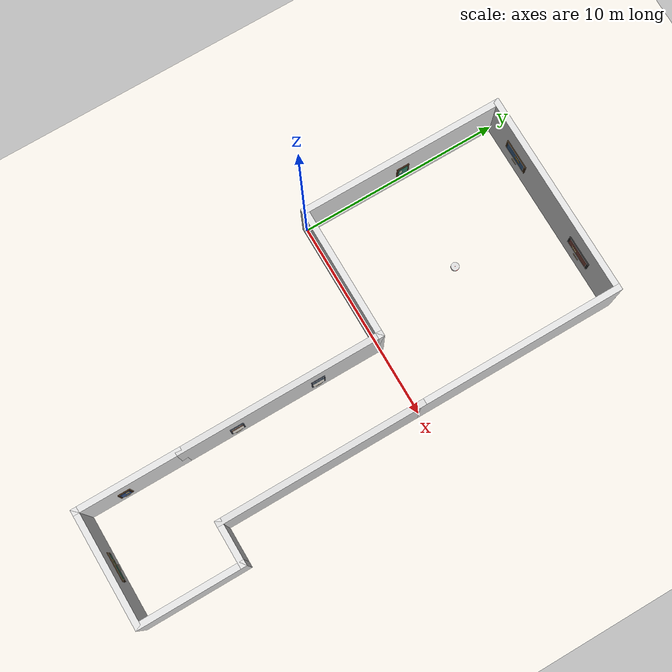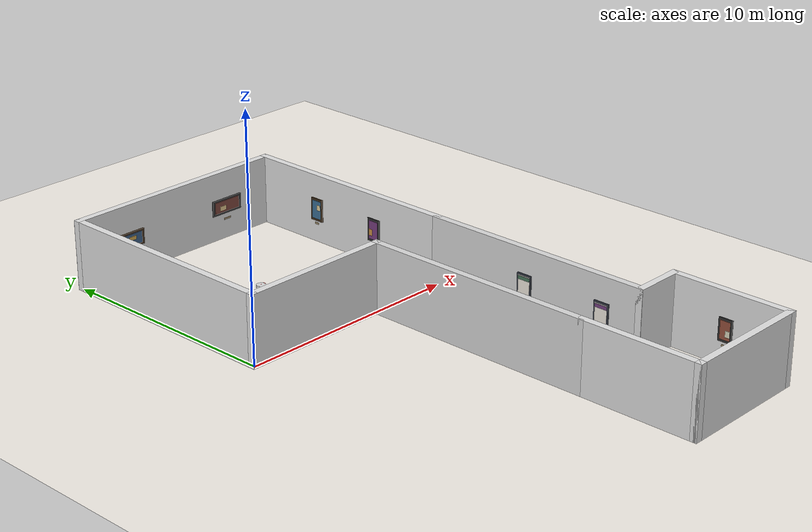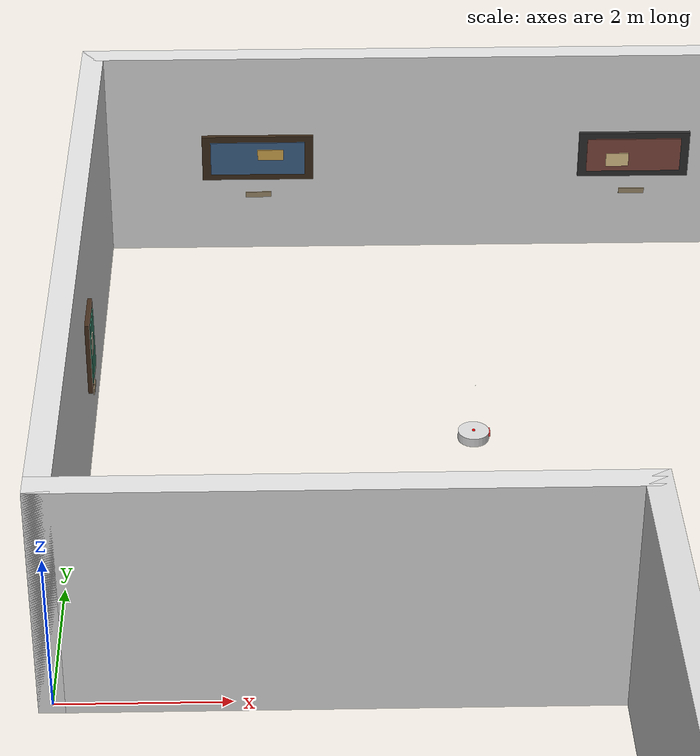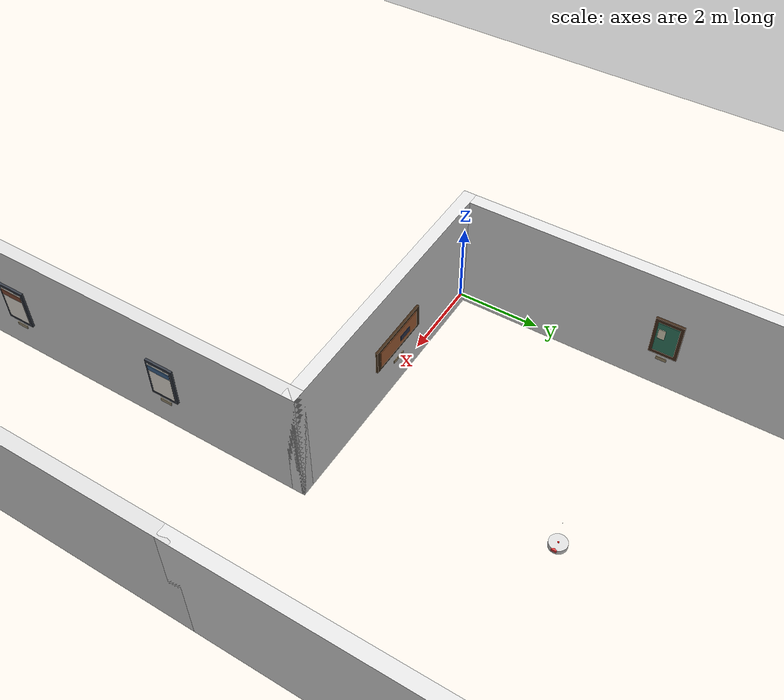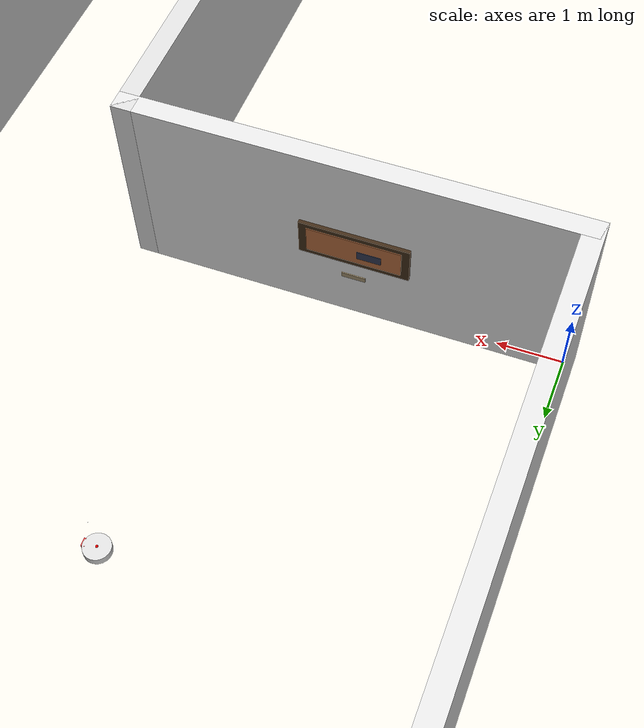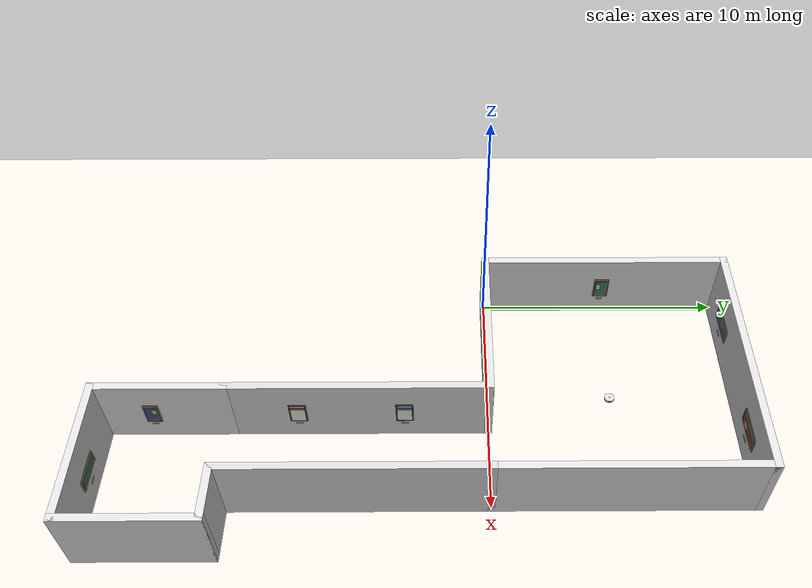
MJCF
<mujoco model="museum_shell">
  <compiler angle="radian"/>

  <option gravity="0 0 0"/>

  <visual>
    <global offwidth="1920" offheight="1080"/>
    <quality offsamples="8"/>
  </visual>

  <worldbody>
    <geom name="floor" size="30 30 0.1" type="plane" rgba="0.95 0.93 0.9 1"/>
    <geom name="corridor_wall_left" size="0.15 5.15 1.5" pos="6.5 -5 1.5" type="box" rgba="0.85 0.85 0.85 1"/>
    <geom name="corridor_wall_right" size="0.15 5.15 1.5" pos="10 -5 1.5" type="box" rgba="0.85 0.85 0.85 1"/>
    <geom name="roomA_wall_top" size="5.15 0.15 1.5" pos="5 10 1.5" type="box" rgba="0.88 0.88 0.88 1"/>
    <geom name="roomA_wall_left" size="0.15 5.15 1.5" pos="0 5 1.5" type="box" rgba="0.88 0.88 0.88 1"/>
    <geom name="roomA_wall_right" size="0.15 5.15 1.5" pos="10 5 1.5" type="box" rgba="0.88 0.88 0.88 1"/>
    <geom name="roomA_wall_bottom_left" size="3.4 0.15 1.5" pos="3.25 0 1.5" type="box" rgba="0.88 0.88 0.88 1"/>
    <geom name="roomB_wall_left" size="0.15 2.65 1.5" pos="6.5 -12.5 1.5" type="box" rgba="0.88 0.88 0.88 1"/>
    <geom name="roomB_wall_right" size="0.15 2.65 1.5" pos="12 -12.5 1.5" type="box" rgba="0.88 0.88 0.88 1"/>
    <geom name="roomB_wall_bottom" size="2.9 0.15 1.5" pos="9.25 -15 1.5" type="box" rgba="0.88 0.88 0.88 1"/>
    <geom name="roomB_wall_top_right" size="1.15 0.15 1.5" pos="11 -10 1.5" type="box" rgba="0.88 0.88 0.88 1"/>
    <geom name="exhibit_roomA_top_left_frame" size="0.78 0.028 0.34" pos="2.25 9.815 1.48" type="box" contype="0" conaffinity="0" rgba="0.24 0.17 0.1 1"/>
    <geom name="exhibit_roomA_top_left_canvas" size="0.66 0.01 0.25" pos="2.25 9.785 1.48" type="box" contype="0" conaffinity="0" rgba="0.24 0.39 0.55 1"/>
    <geom name="exhibit_roomA_top_left_detail" size="0.18 0.006 0.08" pos="2.43 9.772 1.54" type="box" contype="0" conaffinity="0" rgba="0.84 0.67 0.31 1"/>
    <geom name="exhibit_roomA_top_left_plaque" size="0.18 0.008 0.04" pos="2.25 9.79 0.9" type="box" contype="0" conaffinity="0" rgba="0.62 0.55 0.42 1"/>
    <geom name="exhibit_roomA_top_right_frame" size="0.78 0.028 0.34" pos="7.55 9.815 1.48" type="box" contype="0" conaffinity="0" rgba="0.18 0.18 0.18 1"/>
    <geom name="exhibit_roomA_top_right_canvas" size="0.66 0.01 0.25" pos="7.55 9.785 1.48" type="box" contype="0" conaffinity="0" rgba="0.5 0.28 0.24 1"/>
    <geom name="exhibit_roomA_top_right_detail" size="0.16 0.006 0.1" pos="7.32 9.772 1.41" type="box" contype="0" conaffinity="0" rgba="0.9 0.79 0.56 1"/>
    <geom name="exhibit_roomA_top_right_plaque" size="0.18 0.008 0.04" pos="7.55 9.79 0.9" type="box" contype="0" conaffinity="0" rgba="0.62 0.55 0.42 1"/>
    <geom name="exhibit_roomA_left_frame" size="0.028 0.32 0.5" pos="0.185 5 1.47" type="box" contype="0" conaffinity="0" rgba="0.27 0.18 0.11 1"/>
    <geom name="exhibit_roomA_left_canvas" size="0.01 0.24 0.4" pos="0.214 5 1.47" type="box" contype="0" conaffinity="0" rgba="0.2 0.5 0.4 1"/>
    <geom name="exhibit_roomA_left_detail" size="0.006 0.08 0.13" pos="0.226 4.88 1.58" type="box" contype="0" conaffinity="0" rgba="0.9 0.87 0.77 1"/>
    <geom name="exhibit_roomA_left_plaque" size="0.008 0.12 0.04" pos="0.208 5 0.86" type="box" contype="0" conaffinity="0" rgba="0.62 0.55 0.42 1"/>
    <geom name="exhibit_roomA_right_frame" size="0.028 0.32 0.5" pos="9.815 3.35 1.47" type="box" contype="0" conaffinity="0" rgba="0.18 0.18 0.18 1"/>
    <geom name="exhibit_roomA_right_canvas" size="0.01 0.24 0.4" pos="9.786 3.35 1.47" type="box" contype="0" conaffinity="0" rgba="0.46 0.24 0.49 1"/>
    <geom name="exhibit_roomA_right_detail" size="0.006 0.1 0.14" pos="9.774 3.49 1.36" type="box" contype="0" conaffinity="0" rgba="0.79 0.56 0.26 1"/>
    <geom name="exhibit_roomA_right_plaque" size="0.008 0.12 0.04" pos="9.792 3.35 0.86" type="box" contype="0" conaffinity="0" rgba="0.62 0.55 0.42 1"/>
    <geom name="exhibit_roomA_right_upper_frame" size="0.028 0.32 0.5" pos="9.815 6.65 1.47" type="box" contype="0" conaffinity="0" rgba="0.24 0.17 0.1 1"/>
    <geom name="exhibit_roomA_right_upper_canvas" size="0.01 0.24 0.4" pos="9.786 6.65 1.47" type="box" contype="0" conaffinity="0" rgba="0.23 0.43 0.58 1"/>
    <geom name="exhibit_roomA_right_upper_detail" size="0.006 0.09 0.12" pos="9.774 6.53 1.58" type="box" contype="0" conaffinity="0" rgba="0.89 0.82 0.62 1"/>
    <geom name="exhibit_roomA_right_upper_plaque" size="0.008 0.12 0.04" pos="9.792 6.65 0.86" type="box" contype="0" conaffinity="0" rgba="0.62 0.55 0.42 1"/>
    <geom name="exhibit_roomA_bottom_frame" size="0.82 0.028 0.3" pos="3.15 0.185 1.46" type="box" contype="0" conaffinity="0" rgba="0.25 0.17 0.09 1"/>
    <geom name="exhibit_roomA_bottom_canvas" size="0.7 0.01 0.22" pos="3.15 0.214 1.46" type="box" contype="0" conaffinity="0" rgba="0.71 0.42 0.24 1"/>
    <geom name="exhibit_roomA_bottom_detail" size="0.18 0.006 0.07" pos="2.92 0.226 1.42" type="box" contype="0" conaffinity="0" rgba="0.19 0.22 0.32 1"/>
    <geom name="exhibit_roomA_bottom_plaque" size="0.18 0.008 0.04" pos="3.15 0.208 0.88" type="box" contype="0" conaffinity="0" rgba="0.62 0.55 0.42 1"/>
    <geom name="exhibit_corridor_left_upper_frame" size="0.028 0.34 0.5" pos="6.685 -3.25 1.46" type="box" contype="0" conaffinity="0" rgba="0.22 0.24 0.28 1"/>
    <geom name="exhibit_corridor_left_upper_panel" size="0.01 0.28 0.42" pos="6.714 -3.25 1.46" type="box" contype="0" conaffinity="0" rgba="0.94 0.92 0.88 1"/>
    <geom name="exhibit_corridor_left_upper_title" size="0.006 0.28 0.07" pos="6.726 -3.25 1.78" type="box" contype="0" conaffinity="0" rgba="0.24 0.4 0.57 1"/>
    <geom name="exhibit_corridor_left_upper_plaque" size="0.008 0.14 0.04" pos="6.708 -3.25 0.84" type="box" contype="0" conaffinity="0" rgba="0.66 0.61 0.5 1"/>
    <geom name="exhibit_corridor_left_lower_frame" size="0.028 0.34 0.5" pos="6.685 -7.35 1.46" type="box" contype="0" conaffinity="0" rgba="0.22 0.24 0.28 1"/>
    <geom name="exhibit_corridor_left_lower_panel" size="0.01 0.28 0.42" pos="6.714 -7.35 1.46" type="box" contype="0" conaffinity="0" rgba="0.94 0.92 0.88 1"/>
    <geom name="exhibit_corridor_left_lower_title" size="0.006 0.28 0.07" pos="6.726 -7.35 1.78" type="box" contype="0" conaffinity="0" rgba="0.53 0.3 0.21 1"/>
    <geom name="exhibit_corridor_left_lower_plaque" size="0.008 0.14 0.04" pos="6.708 -7.35 0.84" type="box" contype="0" conaffinity="0" rgba="0.66 0.61 0.5 1"/>
    <geom name="exhibit_corridor_right_upper_frame" size="0.028 0.34 0.5" pos="9.815 -4.65 1.46" type="box" contype="0" conaffinity="0" rgba="0.22 0.24 0.28 1"/>
    <geom name="exhibit_corridor_right_upper_panel" size="0.01 0.28 0.42" pos="9.786 -4.65 1.46" type="box" contype="0" conaffinity="0" rgba="0.94 0.92 0.88 1"/>
    <geom name="exhibit_corridor_right_upper_title" size="0.006 0.28 0.07" pos="9.774 -4.65 1.78" type="box" contype="0" conaffinity="0" rgba="0.28 0.46 0.35 1"/>
    <geom name="exhibit_corridor_right_upper_plaque" size="0.008 0.14 0.04" pos="9.792 -4.65 0.84" type="box" contype="0" conaffinity="0" rgba="0.66 0.61 0.5 1"/>
    <geom name="exhibit_corridor_right_lower_frame" size="0.028 0.34 0.5" pos="9.815 -8.35 1.46" type="box" contype="0" conaffinity="0" rgba="0.22 0.24 0.28 1"/>
    <geom name="exhibit_corridor_right_lower_panel" size="0.01 0.28 0.42" pos="9.786 -8.35 1.46" type="box" contype="0" conaffinity="0" rgba="0.94 0.92 0.88 1"/>
    <geom name="exhibit_corridor_right_lower_title" size="0.006 0.28 0.07" pos="9.774 -8.35 1.78" type="box" contype="0" conaffinity="0" rgba="0.45 0.25 0.5 1"/>
    <geom name="exhibit_corridor_right_lower_plaque" size="0.008 0.14 0.04" pos="9.792 -8.35 0.84" type="box" contype="0" conaffinity="0" rgba="0.66 0.61 0.5 1"/>
    <geom name="exhibit_roomB_left_frame" size="0.028 0.3 0.48" pos="6.685 -12.95 1.46" type="box" contype="0" conaffinity="0" rgba="0.25 0.17 0.1 1"/>
    <geom name="exhibit_roomB_left_canvas" size="0.01 0.22 0.38" pos="6.714 -12.95 1.46" type="box" contype="0" conaffinity="0" rgba="0.23 0.34 0.54 1"/>
    <geom name="exhibit_roomB_left_detail" size="0.006 0.08 0.11" pos="6.726 -12.84 1.6" type="box" contype="0" conaffinity="0" rgba="0.9 0.79 0.53 1"/>
    <geom name="exhibit_roomB_left_plaque" size="0.008 0.12 0.04" pos="6.708 -12.95 0.84" type="box" contype="0" conaffinity="0" rgba="0.62 0.55 0.42 1"/>
    <geom name="exhibit_roomB_right_frame" size="0.028 0.3 0.48" pos="11.815 -12.5 1.46" type="box" contype="0" conaffinity="0" rgba="0.18 0.18 0.18 1"/>
    <geom name="exhibit_roomB_right_canvas" size="0.01 0.22 0.38" pos="11.786 -12.5 1.46" type="box" contype="0" conaffinity="0" rgba="0.58 0.31 0.23 1"/>
    <geom name="exhibit_roomB_right_detail" size="0.006 0.1 0.13" pos="11.774 -12.62 1.34" type="box" contype="0" conaffinity="0" rgba="0.86 0.84 0.74 1"/>
    <geom name="exhibit_roomB_right_plaque" size="0.008 0.12 0.04" pos="11.792 -12.5 0.84" type="box" contype="0" conaffinity="0" rgba="0.62 0.55 0.42 1"/>
    <geom name="exhibit_roomB_bottom_frame" size="0.72 0.028 0.28" pos="9.25 -14.815 1.45" type="box" contype="0" conaffinity="0" rgba="0.24 0.17 0.1 1"/>
    <geom name="exhibit_roomB_bottom_canvas" size="0.6 0.01 0.2" pos="9.25 -14.786 1.45" type="box" contype="0" conaffinity="0" rgba="0.27 0.47 0.37 1"/>
    <geom name="exhibit_roomB_bottom_detail" size="0.14 0.006 0.06" pos="9.05 -14.774 1.49" type="box" contype="0" conaffinity="0" rgba="0.77 0.55 0.25 1"/>
    <geom name="exhibit_roomB_bottom_plaque" size="0.16 0.008 0.04" pos="9.25 -14.792 0.87" type="box" contype="0" conaffinity="0" rgba="0.62 0.55 0.42 1"/>
    <camera name="cam_overview" pos="6 -14 7" quat="0.881017 0.473085 0 0"/>
    <body name="robot" pos="5 5 0.06">
      <joint name="robot_x" pos="0 0 0" axis="1 0 0" type="slide" damping="100"/>
      <joint name="robot_y" pos="0 0 0" axis="0 1 0" type="slide" damping="100"/>
      <joint name="robot_yaw" pos="0 0 0" axis="0 0 1" damping="1"/>
      <geom name="robot_base" size="0.2 0.06" type="cylinder" friction="0.2 0.01 0.001" mass="20" rgba="0.85 0.85 0.85 1"/>
      <geom name="robot_nose" size="0.03 0.06 0.03" pos="0.18 0 0.03" type="box" contype="0" conaffinity="0" rgba="0.95 0.25 0.25 1"/>
      <geom name="robot_speaking_halo" size="0.34 0.004" pos="0 0 -0.055" type="cylinder" contype="0" conaffinity="0" rgba="1 0.9 0.2 0"/>
      <site name="robot_site" pos="0 0 0.06" size="0.02" rgba="1 0 0 1"/>
      <site name="explanation" pos="0 0 0.72" group="3" rgba="1 1 1 1"/>
      <site name="answer question" pos="0 0 0.75" group="1" rgba="1 1 1 1"/>
      <site name="please rejoin" pos="0 0 0.78" group="4" rgba="1 1 1 1"/>
      <site name="Please let me pass." pos="0 0 0.84" group="5" rgba="1 1 1 1"/>
    </body>
    <body name="person1" pos="0 0 0.125">
      <joint name="person1_x" pos="0 0 0" axis="1 0 0" type="slide" damping="100" frictionloss="20"/>
      <joint name="person1_y" pos="0 0 0" axis="0 1 0" type="slide" damping="100" frictionloss="20"/>
      <joint name="person1_yaw" pos="0 0 0" axis="0 0 1" damping="0.1"/>
      <geom name="person1_torso" size="0.125 0.1" pos="0 0 0.125" quat="0.707107 0 0 0.707107" type="capsule" mass="60" rgba="0.25 0.75 0.35 1"/>
      <geom name="person1_head" size="0.09" pos="0 0 0.36" contype="0" conaffinity="0" rgba="0.95 0.85 0.75 1"/>
      <geom name="person1_nose" size="0.02 0.03 0.02" pos="0.18 0 0.36" type="box" contype="0" conaffinity="0" rgba="0.95 0.35 0.35 1"/>
      <geom name="person1_speaking_halo" size="0.32 0.004" pos="0 0 -0.115" type="cylinder" contype="0" conaffinity="0" rgba="1 0.9 0.2 0"/>
      <site name="person1_site" pos="0 0 0.125" size="0.02" rgba="0 1 0 1"/>
      <site name="p1" pos="0 0 0.52" group="2" rgba="1 1 1 1"/>
    </body>
    <body name="person2" pos="0 0 0.125">
      <joint name="person2_x" pos="0 0 0" axis="1 0 0" type="slide" damping="100" frictionloss="20"/>
      <joint name="person2_y" pos="0 0 0" axis="0 1 0" type="slide" damping="100" frictionloss="20"/>
      <joint name="person2_yaw" pos="0 0 0" axis="0 0 1" damping="0.1"/>
      <geom name="person2_torso" size="0.125 0.1" pos="0 0 0.125" quat="0.707107 0 0 0.707107" type="capsule" mass="60" rgba="0.2 0.7 0.3 1"/>
      <geom name="person2_head" size="0.09" pos="0 0 0.36" contype="0" conaffinity="0" rgba="0.95 0.85 0.75 1"/>
      <geom name="person2_nose" size="0.02 0.03 0.02" pos="0.18 0 0.36" type="box" contype="0" conaffinity="0" rgba="0.95 0.35 0.35 1"/>
      <geom name="person2_speaking_halo" size="0.32 0.004" pos="0 0 -0.115" type="cylinder" contype="0" conaffinity="0" rgba="1 0.9 0.2 0"/>
      <site name="person2_site" pos="0 0 0.125" size="0.02" rgba="0 1 0 1"/>
      <site name="p2" pos="0 0 0.52" group="2" rgba="1 1 1 1"/>
    </body>
    <body name="person3" pos="0 0 0.125">
      <joint name="person3_x" pos="0 0 0" axis="1 0 0" type="slide" damping="100" frictionloss="20"/>
      <joint name="person3_y" pos="0 0 0" axis="0 1 0" type="slide" damping="100" frictionloss="20"/>
      <joint name="person3_yaw" pos="0 0 0" axis="0 0 1" damping="0.1"/>
      <geom name="person3_torso" size="0.125 0.1" pos="0 0 0.125" quat="0.707107 0 0 0.707107" type="capsule" mass="60" rgba="0.22 0.72 0.33 1"/>
      <geom name="person3_head" size="0.09" pos="0 0 0.36" contype="0" conaffinity="0" rgba="0.95 0.85 0.75 1"/>
      <geom name="person3_nose" size="0.02 0.03 0.02" pos="0.18 0 0.36" type="box" contype="0" conaffinity="0" rgba="0.95 0.35 0.35 1"/>
      <geom name="person3_speaking_halo" size="0.32 0.004" pos="0 0 -0.115" type="cylinder" contype="0" conaffinity="0" rgba="1 0.9 0.2 0"/>
      <site name="person3_site" pos="0 0 0.125" size="0.02" rgba="0 1 0 1"/>
      <site name="p3" pos="0 0 0.52" group="2" rgba="1 1 1 1"/>
    </body>
    <body name="person4" pos="0 0 0.125">
      <joint name="person4_x" pos="0 0 0" axis="1 0 0" type="slide" damping="100" frictionloss="20"/>
      <joint name="person4_y" pos="0 0 0" axis="0 1 0" type="slide" damping="100" frictionloss="20"/>
      <joint name="person4_yaw" pos="0 0 0" axis="0 0 1" damping="0.1"/>
      <geom name="person4_torso" size="0.125 0.1" pos="0 0 0.125" quat="0.707107 0 0 0.707107" type="capsule" mass="60" rgba="0.24 0.74 0.35 1"/>
      <geom name="person4_head" size="0.09" pos="0 0 0.36" contype="0" conaffinity="0" rgba="0.95 0.85 0.75 1"/>
      <geom name="person4_nose" size="0.02 0.03 0.02" pos="0.18 0 0.36" type="box" contype="0" conaffinity="0" rgba="0.95 0.35 0.35 1"/>
      <geom name="person4_speaking_halo" size="0.32 0.004" pos="0 0 -0.115" type="cylinder" contype="0" conaffinity="0" rgba="1 0.9 0.2 0"/>
      <site name="person4_site" pos="0 0 0.125" size="0.02" rgba="0 1 0 1"/>
      <site name="p4" pos="0 0 0.52" group="2" rgba="1 1 1 1"/>
    </body>
    <body name="person5" pos="0 0 0.125">
      <joint name="person5_x" pos="0 0 0" axis="1 0 0" type="slide" damping="100" frictionloss="20"/>
      <joint name="person5_y" pos="0 0 0" axis="0 1 0" type="slide" damping="100" frictionloss="20"/>
      <joint name="person5_yaw" pos="0 0 0" axis="0 0 1" damping="0.1"/>
      <geom name="person5_torso" size="0.125 0.1" pos="0 0 0.125" quat="0.707107 0 0 0.707107" type="capsule" mass="60" rgba="0.26 0.76 0.37 1"/>
      <geom name="person5_head" size="0.09" pos="0 0 0.36" contype="0" conaffinity="0" rgba="0.95 0.85 0.75 1"/>
      <geom name="person5_nose" size="0.02 0.03 0.02" pos="0.18 0 0.36" type="box" contype="0" conaffinity="0" rgba="0.95 0.35 0.35 1"/>
      <geom name="person5_speaking_halo" size="0.32 0.004" pos="0 0 -0.115" type="cylinder" contype="0" conaffinity="0" rgba="1 0.9 0.2 0"/>
      <site name="person5_site" pos="0 0 0.125" size="0.02" rgba="0 1 0 1"/>
      <site name="p5" pos="0 0 0.52" group="2" rgba="1 1 1 1"/>
    </body>
    <body name="person6" pos="0 0 0.125">
      <joint name="person6_x" pos="0 0 0" axis="1 0 0" type="slide" damping="100" frictionloss="20"/>
      <joint name="person6_y" pos="0 0 0" axis="0 1 0" type="slide" damping="100" frictionloss="20"/>
      <joint name="person6_yaw" pos="0 0 0" axis="0 0 1" damping="0.1"/>
      <geom name="person6_torso" size="0.125 0.1" pos="0 0 0.125" quat="0.707107 0 0 0.707107" type="capsule" mass="60" rgba="0.28 0.78 0.39 1"/>
      <geom name="person6_head" size="0.09" pos="0 0 0.36" contype="0" conaffinity="0" rgba="0.95 0.85 0.75 1"/>
      <geom name="person6_nose" size="0.02 0.03 0.02" pos="0.18 0 0.36" type="box" contype="0" conaffinity="0" rgba="0.95 0.35 0.35 1"/>
      <geom name="person6_speaking_halo" size="0.32 0.004" pos="0 0 -0.115" type="cylinder" contype="0" conaffinity="0" rgba="1 0.9 0.2 0"/>
      <site name="person6_site" pos="0 0 0.125" size="0.02" rgba="0 1 0 1"/>
      <site name="p6" pos="0 0 0.52" group="2" rgba="1 1 1 1"/>
    </body>
    <body name="person7" pos="0 0 0.125">
      <joint name="person7_x" pos="0 0 0" axis="1 0 0" type="slide" damping="100" frictionloss="20"/>
      <joint name="person7_y" pos="0 0 0" axis="0 1 0" type="slide" damping="100" frictionloss="20"/>
      <joint name="person7_yaw" pos="0 0 0" axis="0 0 1" damping="0.1"/>
      <geom name="person7_torso" size="0.125 0.1" pos="0 0 0.125" quat="0.707107 0 0 0.707107" type="capsule" mass="60" rgba="0.3 0.8 0.41 1"/>
      <geom name="person7_head" size="0.09" pos="0 0 0.36" contype="0" conaffinity="0" rgba="0.95 0.85 0.75 1"/>
      <geom name="person7_nose" size="0.02 0.03 0.02" pos="0.18 0 0.36" type="box" contype="0" conaffinity="0" rgba="0.95 0.35 0.35 1"/>
      <geom name="person7_speaking_halo" size="0.32 0.004" pos="0 0 -0.115" type="cylinder" contype="0" conaffinity="0" rgba="1 0.9 0.2 0"/>
      <site name="person7_site" pos="0 0 0.125" size="0.02" rgba="0 1 0 1"/>
      <site name="p7" pos="0 0 0.52" group="2" rgba="1 1 1 1"/>
    </body>
    <body name="person8" pos="0 0 0.125">
      <joint name="person8_x" pos="0 0 0" axis="1 0 0" type="slide" damping="100" frictionloss="20"/>
      <joint name="person8_y" pos="0 0 0" axis="0 1 0" type="slide" damping="100" frictionloss="20"/>
      <joint name="person8_yaw" pos="0 0 0" axis="0 0 1" damping="0.1"/>
      <geom name="person8_torso" size="0.125 0.1" pos="0 0 0.125" quat="0.707107 0 0 0.707107" type="capsule" mass="60" rgba="0.32 0.82 0.43 1"/>
      <geom name="person8_head" size="0.09" pos="0 0 0.36" contype="0" conaffinity="0" rgba="0.95 0.85 0.75 1"/>
      <geom name="person8_nose" size="0.02 0.03 0.02" pos="0.18 0 0.36" type="box" contype="0" conaffinity="0" rgba="0.95 0.35 0.35 1"/>
      <geom name="person8_speaking_halo" size="0.32 0.004" pos="0 0 -0.115" type="cylinder" contype="0" conaffinity="0" rgba="1 0.9 0.2 0"/>
      <site name="person8_site" pos="0 0 0.125" size="0.02" rgba="0 1 0 1"/>
      <site name="p8" pos="0 0 0.52" group="2" rgba="1 1 1 1"/>
    </body>
    <body name="person9" pos="0 0 0.125">
      <joint name="person9_x" pos="0 0 0" axis="1 0 0" type="slide" damping="100" frictionloss="20"/>
      <joint name="person9_y" pos="0 0 0" axis="0 1 0" type="slide" damping="100" frictionloss="20"/>
      <joint name="person9_yaw" pos="0 0 0" axis="0 0 1" damping="0.1"/>
      <geom name="person9_torso" size="0.125 0.1" pos="0 0 0.125" quat="0.707107 0 0 0.707107" type="capsule" mass="60" rgba="0.34 0.84 0.45 1"/>
      <geom name="person9_head" size="0.09" pos="0 0 0.36" contype="0" conaffinity="0" rgba="0.95 0.85 0.75 1"/>
      <geom name="person9_nose" size="0.02 0.03 0.02" pos="0.18 0 0.36" type="box" contype="0" conaffinity="0" rgba="0.95 0.35 0.35 1"/>
      <geom name="person9_speaking_halo" size="0.32 0.004" pos="0 0 -0.115" type="cylinder" contype="0" conaffinity="0" rgba="1 0.9 0.2 0"/>
      <site name="person9_site" pos="0 0 0.125" size="0.02" rgba="0 1 0 1"/>
      <site name="p9" pos="0 0 0.52" group="2" rgba="1 1 1 1"/>
    </body>
    <body name="person10" pos="0 0 0.125">
      <joint name="person10_x" pos="0 0 0" axis="1 0 0" type="slide" damping="100" frictionloss="20"/>
      <joint name="person10_y" pos="0 0 0" axis="0 1 0" type="slide" damping="100" frictionloss="20"/>
      <joint name="person10_yaw" pos="0 0 0" axis="0 0 1" damping="0.1"/>
      <geom name="person10_torso" size="0.125 0.1" pos="0 0 0.125" quat="0.707107 0 0 0.707107" type="capsule" mass="60" rgba="0.36 0.86 0.47 1"/>
      <geom name="person10_head" size="0.09" pos="0 0 0.36" contype="0" conaffinity="0" rgba="0.95 0.85 0.75 1"/>
      <geom name="person10_nose" size="0.02 0.03 0.02" pos="0.18 0 0.36" type="box" contype="0" conaffinity="0" rgba="0.95 0.35 0.35 1"/>
      <geom name="person10_speaking_halo" size="0.32 0.004" pos="0 0 -0.115" type="cylinder" contype="0" conaffinity="0" rgba="1 0.9 0.2 0"/>
      <site name="person10_site" pos="0 0 0.125" size="0.02" rgba="0 1 0 1"/>
      <site name="p10" pos="0 0 0.52" group="2" rgba="1 1 1 1"/>
    </body>
    <body name="person11" pos="0 0 0.125">
      <joint name="person11_x" pos="0 0 0" axis="1 0 0" type="slide" damping="100" frictionloss="20"/>
      <joint name="person11_y" pos="0 0 0" axis="0 1 0" type="slide" damping="100" frictionloss="20"/>
      <joint name="person11_yaw" pos="0 0 0" axis="0 0 1" damping="0.1"/>
      <geom name="person11_torso" size="0.125 0.1" pos="0 0 0.125" quat="0.707107 0 0 0.707107" type="capsule" mass="60" rgba="0.38 0.88 0.49 1"/>
      <geom name="person11_head" size="0.09" pos="0 0 0.36" contype="0" conaffinity="0" rgba="0.95 0.85 0.75 1"/>
      <geom name="person11_nose" size="0.02 0.03 0.02" pos="0.18 0 0.36" type="box" contype="0" conaffinity="0" rgba="0.95 0.35 0.35 1"/>
      <geom name="person11_speaking_halo" size="0.32 0.004" pos="0 0 -0.115" type="cylinder" contype="0" conaffinity="0" rgba="1 0.9 0.2 0"/>
      <site name="person11_site" pos="0 0 0.125" size="0.02" rgba="0 1 0 1"/>
      <site name="p11" pos="0 0 0.52" group="2" rgba="1 1 1 1"/>
    </body>
    <body name="person12" pos="0 0 0.125">
      <joint name="person12_x" pos="0 0 0" axis="1 0 0" type="slide" damping="100" frictionloss="20"/>
      <joint name="person12_y" pos="0 0 0" axis="0 1 0" type="slide" damping="100" frictionloss="20"/>
      <joint name="person12_yaw" pos="0 0 0" axis="0 0 1" damping="0.1"/>
      <geom name="person12_torso" size="0.125 0.1" pos="0 0 0.125" quat="0.707107 0 0 0.707107" type="capsule" mass="60" rgba="0.4 0.9 0.51 1"/>
      <geom name="person12_head" size="0.09" pos="0 0 0.36" contype="0" conaffinity="0" rgba="0.95 0.85 0.75 1"/>
      <geom name="person12_nose" size="0.02 0.03 0.02" pos="0.18 0 0.36" type="box" contype="0" conaffinity="0" rgba="0.95 0.35 0.35 1"/>
      <geom name="person12_speaking_halo" size="0.32 0.004" pos="0 0 -0.115" type="cylinder" contype="0" conaffinity="0" rgba="1 0.9 0.2 0"/>
      <site name="person12_site" pos="0 0 0.125" size="0.02" rgba="0 1 0 1"/>
      <site name="p12" pos="0 0 0.52" group="2" rgba="1 1 1 1"/>
    </body>
    <body name="person13" pos="0 0 0.125">
      <joint name="person13_x" pos="0 0 0" axis="1 0 0" type="slide" damping="100" frictionloss="20"/>
      <joint name="person13_y" pos="0 0 0" axis="0 1 0" type="slide" damping="100" frictionloss="20"/>
      <joint name="person13_yaw" pos="0 0 0" axis="0 0 1" damping="0.1"/>
      <geom name="person13_torso" size="0.125 0.1" pos="0 0 0.125" quat="0.707107 0 0 0.707107" type="capsule" mass="60" rgba="0.42 0.92 0.53 1"/>
      <geom name="person13_head" size="0.09" pos="0 0 0.36" contype="0" conaffinity="0" rgba="0.95 0.85 0.75 1"/>
      <geom name="person13_nose" size="0.02 0.03 0.02" pos="0.18 0 0.36" type="box" contype="0" conaffinity="0" rgba="0.95 0.35 0.35 1"/>
      <geom name="person13_speaking_halo" size="0.32 0.004" pos="0 0 -0.115" type="cylinder" contype="0" conaffinity="0" rgba="1 0.9 0.2 0"/>
      <site name="person13_site" pos="0 0 0.125" size="0.02" rgba="0 1 0 1"/>
      <site name="p13" pos="0 0 0.52" group="2" rgba="1 1 1 1"/>
    </body>
    <body name="person14" pos="0 0 0.125">
      <joint name="person14_x" pos="0 0 0" axis="1 0 0" type="slide" damping="100" frictionloss="20"/>
      <joint name="person14_y" pos="0 0 0" axis="0 1 0" type="slide" damping="100" frictionloss="20"/>
      <joint name="person14_yaw" pos="0 0 0" axis="0 0 1" damping="0.1"/>
      <geom name="person14_torso" size="0.125 0.1" pos="0 0 0.125" quat="0.707107 0 0 0.707107" type="capsule" mass="60" rgba="0.44 0.94 0.55 1"/>
      <geom name="person14_head" size="0.09" pos="0 0 0.36" contype="0" conaffinity="0" rgba="0.95 0.85 0.75 1"/>
      <geom name="person14_nose" size="0.02 0.03 0.02" pos="0.18 0 0.36" type="box" contype="0" conaffinity="0" rgba="0.95 0.35 0.35 1"/>
      <geom name="person14_speaking_halo" size="0.32 0.004" pos="0 0 -0.115" type="cylinder" contype="0" conaffinity="0" rgba="1 0.9 0.2 0"/>
      <site name="person14_site" pos="0 0 0.125" size="0.02" rgba="0 1 0 1"/>
      <site name="p14" pos="0 0 0.52" group="2" rgba="1 1 1 1"/>
    </body>
    <body name="person15" pos="0 0 0.125">
      <joint name="person15_x" pos="0 0 0" axis="1 0 0" type="slide" damping="100" frictionloss="20"/>
      <joint name="person15_y" pos="0 0 0" axis="0 1 0" type="slide" damping="100" frictionloss="20"/>
      <joint name="person15_yaw" pos="0 0 0" axis="0 0 1" damping="0.1"/>
      <geom name="person15_torso" size="0.125 0.1" pos="0 0 0.125" quat="0.707107 0 0 0.707107" type="capsule" mass="60" rgba="0.46 0.96 0.57 1"/>
      <geom name="person15_head" size="0.09" pos="0 0 0.36" contype="0" conaffinity="0" rgba="0.95 0.85 0.75 1"/>
      <geom name="person15_nose" size="0.02 0.03 0.02" pos="0.18 0 0.36" type="box" contype="0" conaffinity="0" rgba="0.95 0.35 0.35 1"/>
      <geom name="person15_speaking_halo" size="0.32 0.004" pos="0 0 -0.115" type="cylinder" contype="0" conaffinity="0" rgba="1 0.9 0.2 0"/>
      <site name="person15_site" pos="0 0 0.125" size="0.02" rgba="0 1 0 1"/>
      <site name="p15" pos="0 0 0.52" group="2" rgba="1 1 1 1"/>
    </body>
  </worldbody>

  <actuator>
    <general name="motor_x" joint="robot_x" ctrlrange="-1.5 1.5" biastype="affine" gainprm="300" biasprm="0 0 -300"/>
    <general name="motor_y" joint="robot_y" ctrlrange="-1.5 1.5" biastype="affine" gainprm="300" biasprm="0 0 -300"/>
    <general name="motor_yaw" joint="robot_yaw" ctrlrange="-10 10" biastype="affine" gainprm="300" biasprm="0 0 -300"/>
    <general name="person1_motor_x" joint="person1_x" ctrlrange="-1.67 1.67" biastype="affine" gainprm="300" biasprm="0 0 -300"/>
    <general name="person1_motor_y" joint="person1_y" ctrlrange="-1.67 1.67" biastype="affine" gainprm="300" biasprm="0 0 -300"/>
    <general name="person1_motor_yaw" joint="person1_yaw" ctrlrange="-20 20" biastype="affine" gainprm="300" biasprm="0 0 -300"/>
    <general name="person2_motor_x" joint="person2_x" ctrlrange="-1.67 1.67" biastype="affine" gainprm="300" biasprm="0 0 -300"/>
    <general name="person2_motor_y" joint="person2_y" ctrlrange="-1.67 1.67" biastype="affine" gainprm="300" biasprm="0 0 -300"/>
    <general name="person2_motor_yaw" joint="person2_yaw" ctrlrange="-20 20" biastype="affine" gainprm="300" biasprm="0 0 -300"/>
    <general name="person3_motor_x" joint="person3_x" ctrlrange="-1.67 1.67" biastype="affine" gainprm="300" biasprm="0 0 -300"/>
    <general name="person3_motor_y" joint="person3_y" ctrlrange="-1.67 1.67" biastype="affine" gainprm="300" biasprm="0 0 -300"/>
    <general name="person3_motor_yaw" joint="person3_yaw" ctrlrange="-20 20" biastype="affine" gainprm="300" biasprm="0 0 -300"/>
    <general name="person4_motor_x" joint="person4_x" ctrlrange="-1.67 1.67" biastype="affine" gainprm="300" biasprm="0 0 -300"/>
    <general name="person4_motor_y" joint="person4_y" ctrlrange="-1.67 1.67" biastype="affine" gainprm="300" biasprm="0 0 -300"/>
    <general name="person4_motor_yaw" joint="person4_yaw" ctrlrange="-20 20" biastype="affine" gainprm="300" biasprm="0 0 -300"/>
    <general name="person5_motor_x" joint="person5_x" ctrlrange="-1.67 1.67" biastype="affine" gainprm="300" biasprm="0 0 -300"/>
    <general name="person5_motor_y" joint="person5_y" ctrlrange="-1.67 1.67" biastype="affine" gainprm="300" biasprm="0 0 -300"/>
    <general name="person5_motor_yaw" joint="person5_yaw" ctrlrange="-20 20" biastype="affine" gainprm="300" biasprm="0 0 -300"/>
    <general name="person6_motor_x" joint="person6_x" ctrlrange="-1.67 1.67" biastype="affine" gainprm="300" biasprm="0 0 -300"/>
    <general name="person6_motor_y" joint="person6_y" ctrlrange="-1.67 1.67" biastype="affine" gainprm="300" biasprm="0 0 -300"/>
    <general name="person6_motor_yaw" joint="person6_yaw" ctrlrange="-20 20" biastype="affine" gainprm="300" biasprm="0 0 -300"/>
    <general name="person7_motor_x" joint="person7_x" ctrlrange="-1.67 1.67" biastype="affine" gainprm="300" biasprm="0 0 -300"/>
    <general name="person7_motor_y" joint="person7_y" ctrlrange="-1.67 1.67" biastype="affine" gainprm="300" biasprm="0 0 -300"/>
    <general name="person7_motor_yaw" joint="person7_yaw" ctrlrange="-20 20" biastype="affine" gainprm="300" biasprm="0 0 -300"/>
    <general name="person8_motor_x" joint="person8_x" ctrlrange="-1.67 1.67" biastype="affine" gainprm="300" biasprm="0 0 -300"/>
    <general name="person8_motor_y" joint="person8_y" ctrlrange="-1.67 1.67" biastype="affine" gainprm="300" biasprm="0 0 -300"/>
    <general name="person8_motor_yaw" joint="person8_yaw" ctrlrange="-20 20" biastype="affine" gainprm="300" biasprm="0 0 -300"/>
    <general name="person9_motor_x" joint="person9_x" ctrlrange="-1.67 1.67" biastype="affine" gainprm="300" biasprm="0 0 -300"/>
    <general name="person9_motor_y" joint="person9_y" ctrlrange="-1.67 1.67" biastype="affine" gainprm="300" biasprm="0 0 -300"/>
    <general name="person9_motor_yaw" joint="person9_yaw" ctrlrange="-20 20" biastype="affine" gainprm="300" biasprm="0 0 -300"/>
    <general name="person10_motor_x" joint="person10_x" ctrlrange="-1.67 1.67" biastype="affine" gainprm="300" biasprm="0 0 -300"/>
    <general name="person10_motor_y" joint="person10_y" ctrlrange="-1.67 1.67" biastype="affine" gainprm="300" biasprm="0 0 -300"/>
    <general name="person10_motor_yaw" joint="person10_yaw" ctrlrange="-20 20" biastype="affine" gainprm="300" biasprm="0 0 -300"/>
    <general name="person11_motor_x" joint="person11_x" ctrlrange="-1.67 1.67" biastype="affine" gainprm="300" biasprm="0 0 -300"/>
    <general name="person11_motor_y" joint="person11_y" ctrlrange="-1.67 1.67" biastype="affine" gainprm="300" biasprm="0 0 -300"/>
    <general name="person11_motor_yaw" joint="person11_yaw" ctrlrange="-20 20" biastype="affine" gainprm="300" biasprm="0 0 -300"/>
    <general name="person12_motor_x" joint="person12_x" ctrlrange="-1.67 1.67" biastype="affine" gainprm="300" biasprm="0 0 -300"/>
    <general name="person12_motor_y" joint="person12_y" ctrlrange="-1.67 1.67" biastype="affine" gainprm="300" biasprm="0 0 -300"/>
    <general name="person12_motor_yaw" joint="person12_yaw" ctrlrange="-20 20" biastype="affine" gainprm="300" biasprm="0 0 -300"/>
    <general name="person13_motor_x" joint="person13_x" ctrlrange="-1.67 1.67" biastype="affine" gainprm="300" biasprm="0 0 -300"/>
    <general name="person13_motor_y" joint="person13_y" ctrlrange="-1.67 1.67" biastype="affine" gainprm="300" biasprm="0 0 -300"/>
    <general name="person13_motor_yaw" joint="person13_yaw" ctrlrange="-20 20" biastype="affine" gainprm="300" biasprm="0 0 -300"/>
    <general name="person14_motor_x" joint="person14_x" ctrlrange="-1.67 1.67" biastype="affine" gainprm="300" biasprm="0 0 -300"/>
    <general name="person14_motor_y" joint="person14_y" ctrlrange="-1.67 1.67" biastype="affine" gainprm="300" biasprm="0 0 -300"/>
    <general name="person14_motor_yaw" joint="person14_yaw" ctrlrange="-20 20" biastype="affine" gainprm="300" biasprm="0 0 -300"/>
    <general name="person15_motor_x" joint="person15_x" ctrlrange="-1.67 1.67" biastype="affine" gainprm="300" biasprm="0 0 -300"/>
    <general name="person15_motor_y" joint="person15_y" ctrlrange="-1.67 1.67" biastype="affine" gainprm="300" biasprm="0 0 -300"/>
    <general name="person15_motor_yaw" joint="person15_yaw" ctrlrange="-20 20" biastype="affine" gainprm="300" biasprm="0 0 -300"/>
  </actuator>
</mujoco>
